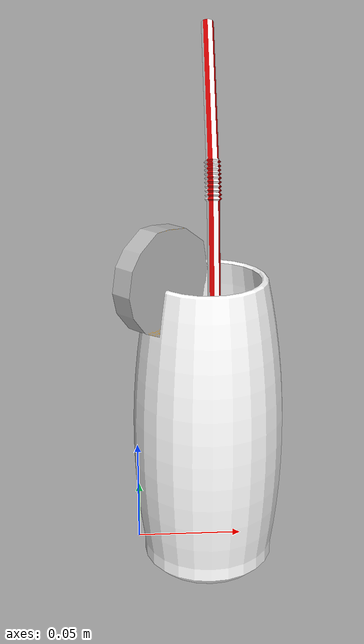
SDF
<?xml version="1.0" ?>
<sdf version="1.6">
  <model name="cocktail">
    <static>1</static>
    <link name="link">
      <inertial>
        <mass>10</mass>
        <inertia>
          <ixx>0.00058</ixx>
          <ixy>0</ixy>
          <ixz>0</ixz>
          <iyy>0.00058</iyy>
          <iyz>0</iyz>
          <izz>0.00019</izz>
        </inertia>
      </inertial>
      <collision name="collision">
	<pose>-1 -1.35 0 0 0 0</pose>
        <geometry>
          <mesh>
            <uri>model://cocktail/meshes/model.dae</uri>
          </mesh>
        </geometry>
          <max_contacts>10</max_contacts>
        <surface>
          <friction>
            <ode>
              <mu>1.0</mu>
              <mu2>1.0</mu2>
            </ode>
          </friction>
          <contact>
            <ode>
              <kp>10000000.0</kp>
              <kd>1.0</kd>
              <min_depth>0.001</min_depth>
              <max_vel>0.1</max_vel>
            </ode>
          </contact>
        </surface>
      </collision>
      <visual name="visual">
        <pose>-1 -1.35 0 0 0 0</pose>
        <geometry>
          <mesh>
            <uri>model://cocktail/meshes/model.dae</uri>
          </mesh>
        </geometry>
      </visual>
    </link>
  </model>
</sdf>
